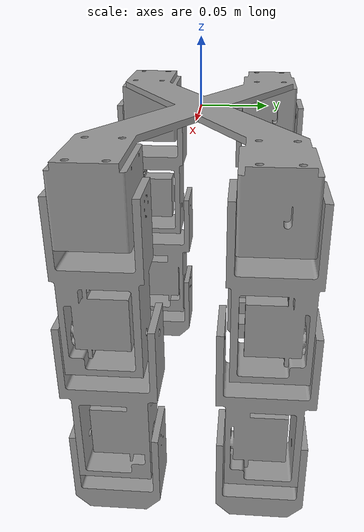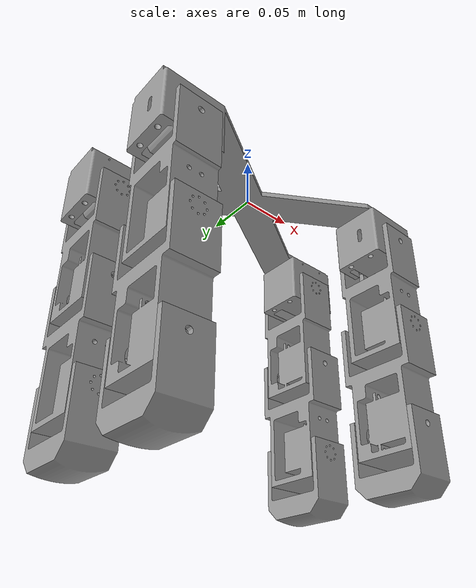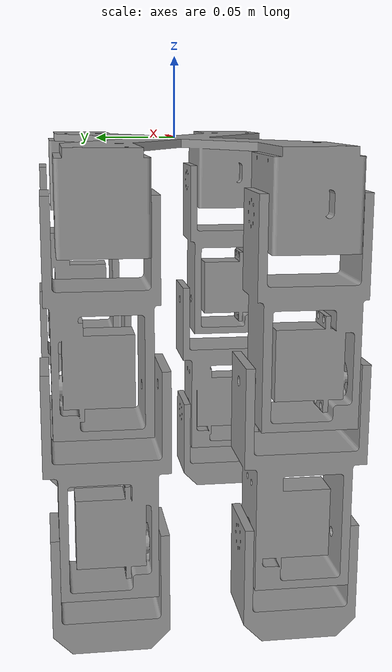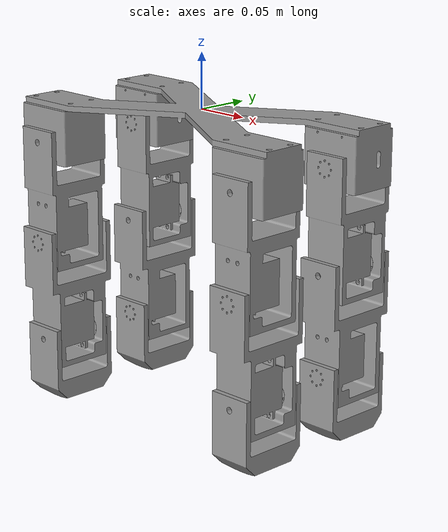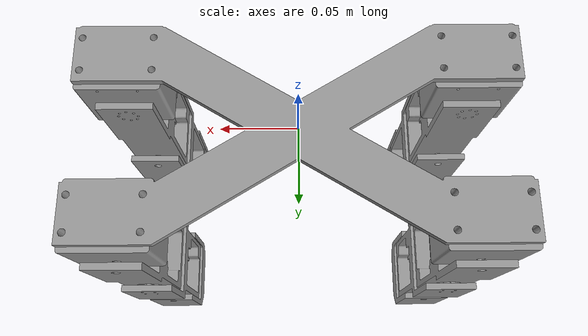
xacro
<?xml version="1.0"?>
<robot
  xmlns:xacro="http://www.ros.org/wiki/xacro"
  name="r3cpg">
  <!-- Parameters -->
  <xacro:include filename="$(find r3cpg_description)/urdf/common.xacro" />
  <!-- URDF Materials -->
  <xacro:include filename="$(find r3cpg_description)/urdf/materials.urdf.xacro" />
  <!-- Gazebo macros -->
  <xacro:include filename="$(find r3cpg_description)/urdf/gazebo.urdf.xacro" />

  <!-- ******** R3CPG Parts ******** -->

  <!-- Body -->
  <xacro:include filename="$(find r3cpg_description)/urdf/body.urdf.xacro" />
  <xacro:body/>
  <!-- Legs -->
  <xacro:include filename="$(find r3cpg_description)/urdf/leg.urdf.xacro" />
  <xacro:leg  parent="leg_base_rr" side="rr" reflect="1" />
  <xacro:leg  parent="leg_base_fr" side="fr" reflect="1" />
  <xacro:leg  parent="leg_base_rl" side="rl" reflect="-1" />
  <xacro:leg  parent="leg_base_fl" side="fl" reflect="-1" />
  <!-- TODO -->

</robot>

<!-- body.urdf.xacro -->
<robot
  xmlns:xacro="http://www.ros.org/wiki/xacro"
  name="r3cpg_body">

  <xacro:macro name="body">
    <link
      name="base_link">
      <inertial>
        <origin
          xyz="3.16587034365767E-17 -1.82145964977565E-17 -0.0227442289486721"
          rpy="0 0 0" />
        <mass
          value="0.527360725339934" />
        <inertia
          ixx="0.00167039431330097"
          ixy="-3.83248574453312E-06"
          ixz="-5.0821976835258E-20"
          iyy="0.00721954116235271"
          iyz="5.42101086242752E-20"
          izz="0.00861560212772434" />
      </inertial>
      <visual>
        <origin
          xyz="0 0 0"
          rpy="0 0 0" />
        <geometry>
          <mesh
            filename="package://r3cpg_description/meshes/base_link.stl" />
        </geometry>
        <material name="Grey3" />
      </visual>
      <collision>
        <origin
          xyz="0 0 0"
          rpy="0 0 0" />
        <geometry>
          <mesh
            filename="package://r3cpg_description/meshes/base_link.stl" />
        </geometry>
      </collision>
    </link>
    <link
      name="leg_base_fr" />
    <joint
      name="leg_base_fr_fixed"
      type="fixed">
      <origin
        xyz="0.121 -0.079 -0.0361"
        rpy="0 0 0" />
      <parent
        link="base_link" />
      <child
        link="leg_base_fr" />
      <axis
        xyz="0 0 0" />
    </joint>
    <link
      name="leg_base_fl" />
    <joint
      name="leg_base_fl_fixed"
      type="fixed">
      <origin
        xyz="0.121 0.079 -0.0361"
        rpy="0 0 0" />
      <parent
        link="base_link" />
      <child
        link="leg_base_fl" />
      <axis
        xyz="0 0 0" />
    </joint>
    <link
      name="leg_base_rr" />
    <joint
      name="leg_base_rr_fixed"
      type="fixed">
      <origin
        xyz="-0.121 -0.079 -0.0361"
        rpy="0 0 0" />
      <parent
        link="base_link" />
      <child
        link="leg_base_rr" />
      <axis
        xyz="0 0 0" />
    </joint>
    <link
      name="leg_base_rl" />
    <joint
      name="leg_base_rl_fixed"
      type="fixed">
      <origin
        xyz="-0.121 0.079 -0.0361"
        rpy="0 0 0" />
      <parent
        link="base_link" />
      <child
        link="leg_base_rl" />
      <axis
        xyz="0 0 0" />
    </joint>
  </xacro:macro>

</robot>

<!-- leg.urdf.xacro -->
<robot
  xmlns:xacro="http://www.ros.org/wiki/xacro"
  name="r3cpg_body"  >

  <xacro:macro name="leg" params="parent side reflect">
    <link
      name="leg_${side}_shoulder">
      <inertial>
        <origin
          xyz="1.7689E-08 0.024508 -0.063634"
          rpy="0 0 0" />
        <mass
          value="0.12155" />
        <inertia
          ixx="0.0001766"
          ixy="-3.1201E-11"
          ixz="-5.9479E-11"
          iyy="0.00014384"
          iyz="1.3321E-06"
          izz="5.9298E-05" />
      </inertial>
      <visual>
        <origin
          xyz="0 0 0"
          rpy="0 0 0" />
        <geometry>
          <mesh
            filename="package://r3cpg_description/meshes/leg_shoulder.stl" />
        </geometry>
        <material name="Grey1" />
      </visual>
      <collision>
        <origin
          xyz="0 0 0"
          rpy="0 0 0" />
        <geometry>
          <mesh
            filename="package://r3cpg_description/meshes/leg_shoulder.stl" />
        </geometry>
      </collision>
    </link>
    <joint
      name="leg_${side}_shoulder"
      type="revolute">
      <origin
        xyz="0 ${-reflect*0.00252} 0"
        rpy="0 0 ${(reflect-1.0)/2.0*3.1415}" />
      <parent
        link="${parent}" />
      <child
        link="leg_${side}_shoulder" />
      <axis
        xyz="0 ${-reflect} 0" />
      <limit
        lower="-1.0"
        upper="1.0"
        effort="0"
        velocity="0" />
    </joint>
    <link
      name="leg_${side}_elbow">
      <inertial>
        <origin
          xyz="-1.7313E-08 0.026803 -0.063159"
          rpy="0 0 0" />
        <mass
          value="0.12414" />
        <inertia
          ixx="0.00018537"
          ixy="-3.1359E-11"
          ixz="6.0464E-11"
          iyy="0.00014551"
          iyz="-2.1303E-06"
          izz="6.7084E-05" />
      </inertial>
      <visual>
        <origin
          xyz="0 0 0"
          rpy="0 0 0" />
        <geometry>
          <mesh
            filename="package://r3cpg_description/meshes/leg_elbow.stl" />
        </geometry>
        <material name="Grey2" />
      </visual>
      <collision>
        <origin
          xyz="0 0 0"
          rpy="0 0 0" />
        <geometry>
          <mesh
            filename="package://r3cpg_description/meshes/leg_elbow.stl" />
        </geometry>
      </collision>
    </link>
    <joint
      name="leg_${side}_elbow_joint"
      type="revolute">
      <origin
        xyz="0 0.00142 -0.09284"
        rpy="0 0 0" />
      <parent
        link="leg_${side}_shoulder" />
      <child
        link="leg_${side}_elbow" />
      <axis
        xyz="0 ${-reflect} 0" />
      <limit
        lower="-1.0"
        upper="1.0"
        effort="0"
        velocity="0" />
    </joint>
    <link
      name="leg_${side}_wrist">
      <inertial>
        <origin
          xyz="-4.1233E-10 0.027507 -0.036847"
          rpy="0 0 0" />
        <mass
          value="0.066391" />
        <inertia
          ixx="5.2481E-05"
          ixy="4.1851E-12"
          ixz="1.8037E-11"
          iyy="3.0101E-05"
          iyz="1.7364E-08"
          izz="3.9757E-05" />
      </inertial>
      <visual>
        <origin
          xyz="0 0 0"
          rpy="0 0 0" />
        <geometry>
          <mesh
            filename="package://r3cpg_description/meshes/leg_wrist.stl" />
        </geometry>
        <material name="Grey3" />
      </visual>
      <collision>
        <origin
          xyz="0 0 0"
          rpy="0 0 0" />
        <geometry>
          <mesh
            filename="package://r3cpg_description/meshes/leg_wrist.stl" />
        </geometry>
      </collision>
    </link>
    <joint
      name="leg_${side}_wrist_joint"
      type="revolute">
      <origin
        xyz="0 -0.00092 -0.09284"
        rpy="0 0 0" />
      <parent
        link="leg_${side}_elbow" />
      <child
        link="leg_${side}_wrist" />
      <axis
        xyz="0 ${-reflect} 0" />
      <limit
        lower="-1.0"
        upper="1.0"
        effort="0"
        velocity="0" />
    </joint>
  </xacro:macro>

</robot>
